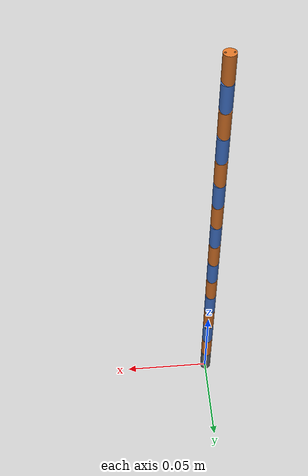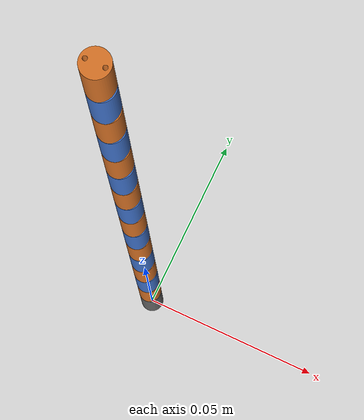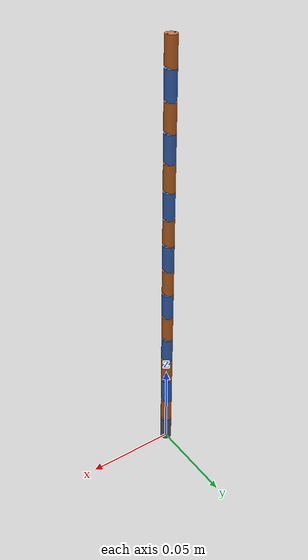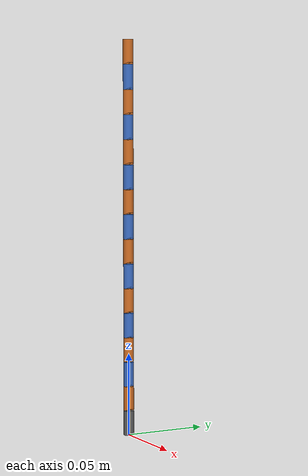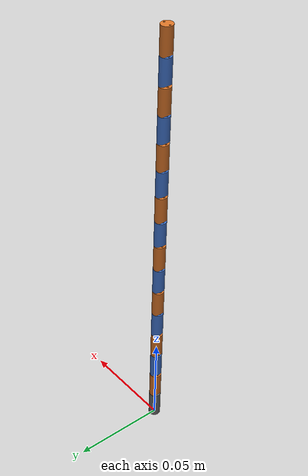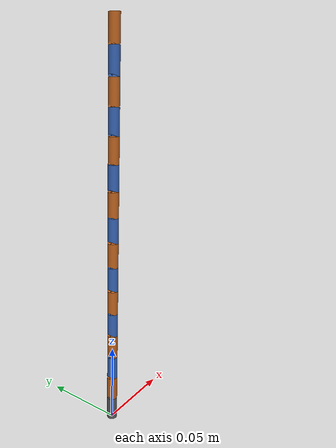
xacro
<?xml version="1.0"?>
<robot name="lopsy" xmlns:xacro="http://www.ros.org/wiki/xacro">
    <xacro:property name="D"  value="6.2e-3"/>
    <xacro:property name="L"  value="15.0e-3"/>
    <xacro:property name="A1" value="2.852192760591869e-3"/>
    <xacro:property name="A2" value="1.7996499303620725e-3"/>
    <xacro:property name="R1" value="5.097599138297361e-3"/>
    <xacro:property name="R2" value="2.0016716701488235e-3"/>

    <xacro:property name="link_mesh"  value="file://$(find lopsy_description)/meshes/link.STL"/>
    <xacro:property name="mesh_scale" value="0.001 0.001 0.001"/>  <!-- STL in mm -->
    <xacro:property name="cx" value="${D/2}"/>  <!-- STL axis offset, x [m] -->
    <xacro:property name="cz" value="${D/2}"/>  <!-- STL axis offset, z [m] -->

    <material name="protagonist"><color rgba="0.85 0.45 0.15 1"/></material>
    <material name="antagonist"><color rgba="0.25 0.45 0.80 1"/></material>
    <material name="base"><color rgba="0.4 0.4 0.4 1"/></material>

    <!-- Base; origin at its bottom, flat top at z = L -->
    <link name="base_link">
        <visual>
            <geometry>
                <cylinder radius="${D/2.0}" length="${L}"/>
            </geometry>
            <origin xyz="0 0 ${L/2.0}" rpy="0 0 0" />
            <material name="base"/>
        </visual>
    </link>

    <xacro:macro name="rolling_link" params="n parent role top offset">
        <xacro:property name="At"      value="${A1 if role == 'P' else A2}"/>
        <xacro:property name="Ac"      value="${A2 if role == 'P' else A1}"/>
        <xacro:property name="R_left"  value="${R1 if role == 'P' else R2}"/>
        <xacro:property name="R_right" value="${R2 if role == 'P' else R1}"/>
        <xacro:property name="alpha"   value="${asin(At / R_left)}"/>   <!-- max +theta (arc span) -->
        <xacro:property name="beta"    value="${asin(Ac / R_right)}"/>  <!-- max -theta (arc span) -->
        <xacro:property name="s"       value="${1 if role == 'P' else -1}"/>

        <!-- Left arc (theta >= 0) -->
        <joint name="j${n}_slide_l" type="prismatic">
            <parent link="${parent}"/>
            <child link="j${n}_slide_l_link"/>
            <origin xyz="${offset} 0 ${top}"/>
            <axis xyz="1 0 0"/>
            <limit lower="0" upper="${R_left * alpha}" effort="10" velocity="1"/>
            <mimic joint="j${n}_roll_l" multiplier="${R_left}" offset="0"/>
        </joint>
        <link name="j${n}_slide_l_link"/>

        <joint name="j${n}_roll_l" type="revolute">
            <parent link="j${n}_slide_l_link"/>
            <child link="j${n}_roll_l_link"/>
            <origin xyz="0 0 ${R_left}"/>
            <axis xyz="0 1 0"/>
            <limit lower="0" upper="${alpha}" effort="10" velocity="1"/>
        </joint>
        <link name="j${n}_roll_l_link"/>

        <!-- Right arc (theta <= 0) -->
        <joint name="j${n}_slide_r" type="prismatic">
            <parent link="j${n}_roll_l_link"/>
            <child link="j${n}_slide_r_link"/>
            <origin xyz="0 0 ${-R_left}"/>
            <axis xyz="1 0 0"/>
            <limit lower="${-R_right * beta}" upper="0" effort="10" velocity="1"/>
            <mimic joint="j${n}_roll_r" multiplier="${R_right}" offset="0"/>
        </joint>
        <link name="j${n}_slide_r_link"/>

        <joint name="j${n}_roll_r" type="revolute">
            <parent link="j${n}_slide_r_link"/>
            <child link="j${n}_roll_r_link"/>
            <origin xyz="0 0 ${R_right}"/>
            <axis xyz="0 1 0"/>
            <limit lower="${-beta}" upper="0" effort="10" velocity="1"/>
        </joint>
        <link name="j${n}_roll_r_link"/>

        <joint name="j${n}_to_link" type="fixed">
            <parent link="j${n}_roll_r_link"/>
            <child link="link_${n}"/>
            <origin xyz="0 0 ${-R_right}"/>
        </joint>

        <link name="link_${n}">
            <visual>
                <origin xyz="${(At - Ac)/2 + s*cx} ${s*cz} ${L}"
                        rpy="${pi/2 if role == 'P' else -pi/2} ${pi if role == 'P' else 0} 0"/>
                <geometry><mesh filename="${link_mesh}" scale="${mesh_scale}"/></geometry>
                <material name="${'protagonist' if role == 'P' else 'antagonist'}"/>
            </visual>
        </link>
    </xacro:macro>

    <xacro:rolling_link n="1"  parent="base_link" role="P" top="${L}" offset="${(A2 - A1)/2}"/>
    <xacro:rolling_link n="2"  parent="link_1"    role="A" top="${L}" offset="${A1 - A2}"/>
    <xacro:rolling_link n="3"  parent="link_2"    role="P" top="${L}" offset="${A2 - A1}"/>
    <xacro:rolling_link n="4"  parent="link_3"    role="A" top="${L}" offset="${A1 - A2}"/>
    <xacro:rolling_link n="5"  parent="link_4"    role="P" top="${L}" offset="${A2 - A1}"/>
    <xacro:rolling_link n="6"  parent="link_5"    role="A" top="${L}" offset="${A1 - A2}"/>
    <xacro:rolling_link n="7"  parent="link_6"    role="P" top="${L}" offset="${A2 - A1}"/>
    <xacro:rolling_link n="8"  parent="link_7"    role="A" top="${L}" offset="${A1 - A2}"/>
    <xacro:rolling_link n="9"  parent="link_8"    role="P" top="${L}" offset="${A2 - A1}"/>
    <xacro:rolling_link n="10" parent="link_9"    role="A" top="${L}" offset="${A1 - A2}"/>
    <xacro:rolling_link n="11" parent="link_10"   role="P" top="${L}" offset="${A2 - A1}"/>
    <xacro:rolling_link n="12" parent="link_11"   role="A" top="${L}" offset="${A1 - A2}"/>
    <xacro:rolling_link n="13" parent="link_12"   role="P" top="${L}" offset="${A2 - A1}"/>
    <xacro:rolling_link n="14" parent="link_13"   role="A" top="${L}" offset="${A1 - A2}"/>
    <xacro:rolling_link n="15" parent="link_14"   role="P" top="${L}" offset="${A2 - A1}"/>

    <!-- Tip frame on top of the last link -->
    <joint name="tip_joint" type="fixed">
        <parent link="link_15"/>
        <child link="tip"/>
        <origin xyz="0 0 ${L}"/>
    </joint>
    <link name="tip"/>

</robot>
